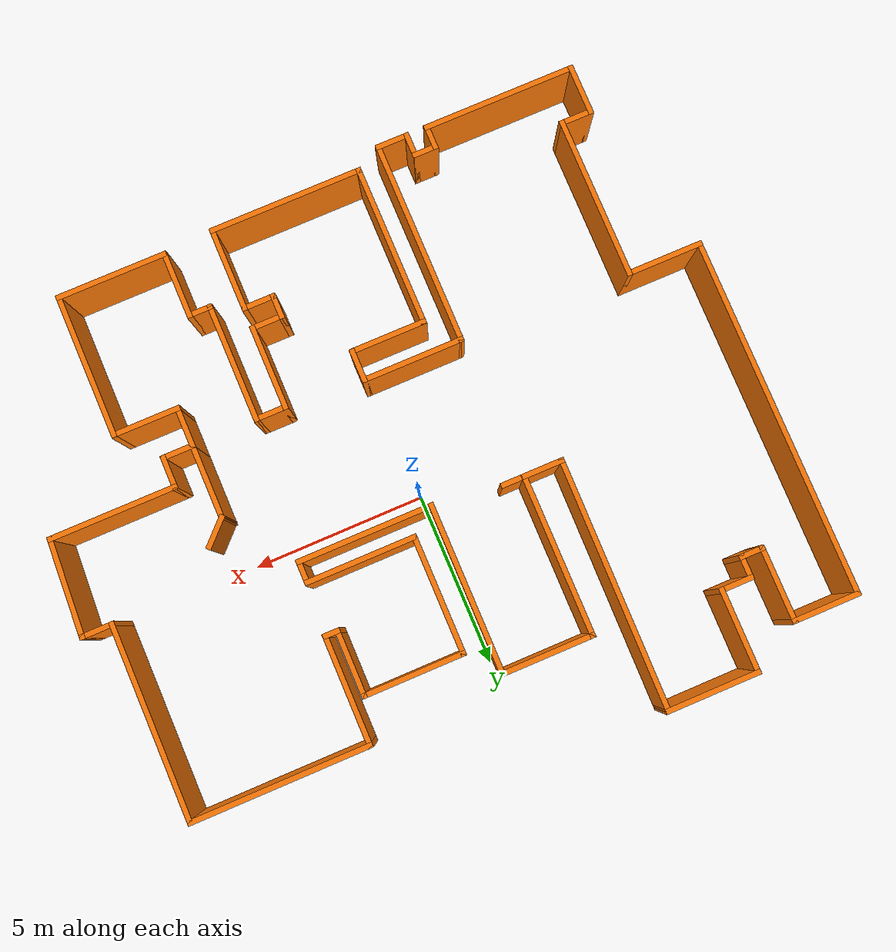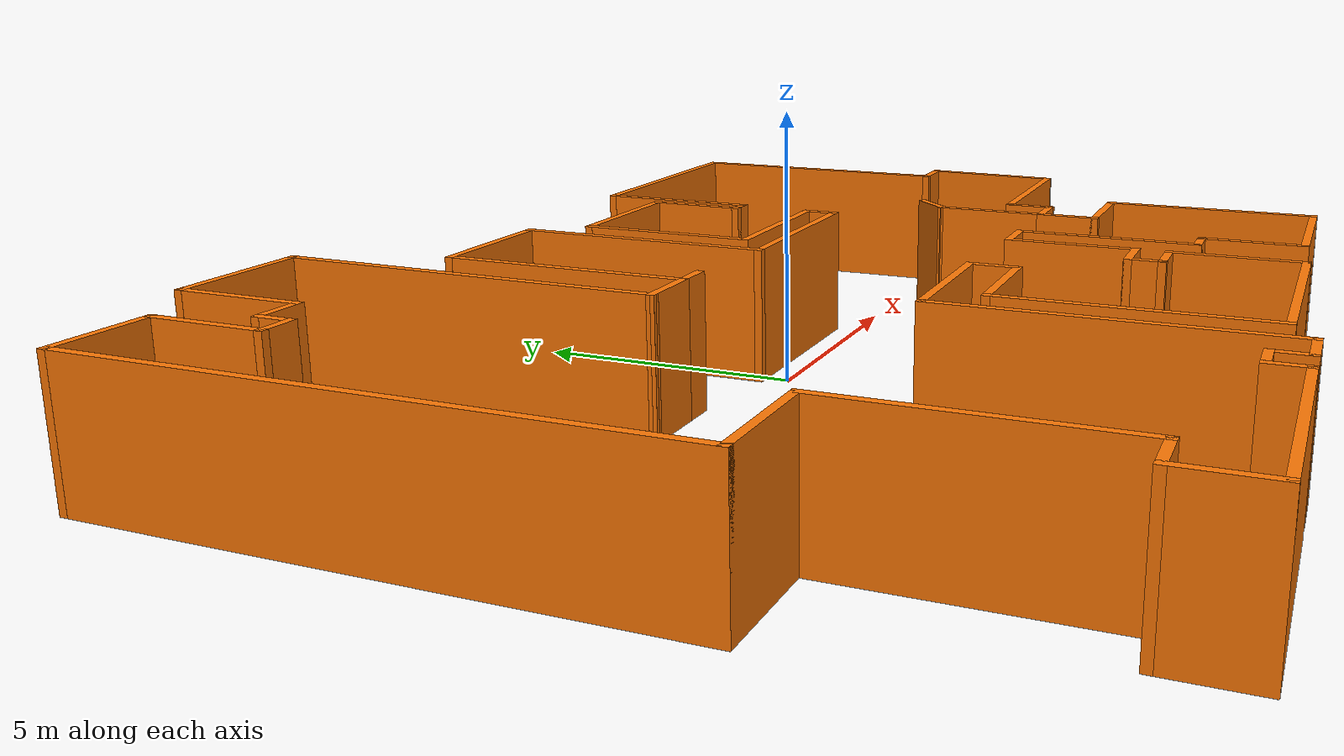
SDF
<?xml version='1.0'?>
<sdf version='1.6'>
  <model name='map_126'>
    <pose frame=''>0.029749 -0.629155 0 0 -0 0</pose>
    <link name='Wall_10'>
      <collision name='Wall_10_Collision'>
        <geometry>
          <box>
            <size>2.75 0.15 2.5</size>
          </box>
        </geometry>
        <pose frame=''>0 0 1.25 0 -0 0</pose>
      </collision>
      <visual name='Wall_10_Visual'>
        <pose frame=''>0 0 1.25 0 -0 0</pose>
        <geometry>
          <box>
            <size>2.75 0.15 2.5</size>
          </box>
        </geometry>
        <material>
          <script>
            <uri>file://media/materials/scripts/gazebo.material</uri>
            <name>Gazebo/Grey</name>
          </script>
          <ambient>0.996078 0.47451 0.0196078 1</ambient>
        </material>
        <meta>
          <layer>0</layer>
        </meta>
      </visual>
      <pose frame=''>-5.12699 8.57474 0 0 -0 0</pose>
    </link>
    <link name='Wall_12'>
      <collision name='Wall_12_Collision'>
        <geometry>
          <box>
            <size>2.5 0.15 2.5</size>
          </box>
        </geometry>
        <pose frame=''>0 0 1.25 0 -0 0</pose>
      </collision>
      <visual name='Wall_12_Visual'>
        <pose frame=''>0 0 1.25 0 -0 0</pose>
        <geometry>
          <box>
            <size>2.5 0.15 2.5</size>
          </box>
        </geometry>
        <material>
          <script>
            <uri>file://media/materials/scripts/gazebo.material</uri>
            <name>Gazebo/Grey</name>
          </script>
          <ambient>0.996078 0.47451 0.0196078 1</ambient>
        </material>
        <meta>
          <layer>0</layer>
        </meta>
      </visual>
      <pose frame=''>-6.42699 7.39974 0 0 -0 -1.5708</pose>
    </link>
    <link name='Wall_13'>
      <collision name='Wall_13_Collision'>
        <geometry>
          <box>
            <size>1 0.15 2.5</size>
          </box>
        </geometry>
        <pose frame=''>0 0 1.25 0 -0 0</pose>
      </collision>
      <visual name='Wall_13_Visual'>
        <pose frame=''>0 0 1.25 0 -0 0</pose>
        <geometry>
          <box>
            <size>1 0.15 2.5</size>
          </box>
        </geometry>
        <material>
          <script>
            <uri>file://media/materials/scripts/gazebo.material</uri>
            <name>Gazebo/Grey</name>
          </script>
          <ambient>0.996078 0.47451 0.0196078 1</ambient>
        </material>
        <meta>
          <layer>0</layer>
        </meta>
      </visual>
      <pose frame=''>-6.85199 6.22474 0 0 -0 3.14159</pose>
    </link>
    <link name='Wall_14'>
      <collision name='Wall_14_Collision'>
        <geometry>
          <box>
            <size>0.75 0.15 2.5</size>
          </box>
        </geometry>
        <pose frame=''>0 0 1.25 0 -0 0</pose>
      </collision>
      <visual name='Wall_14_Visual'>
        <pose frame=''>0 0 1.25 0 -0 0</pose>
        <geometry>
          <box>
            <size>0.75 0.15 2.5</size>
          </box>
        </geometry>
        <material>
          <script>
            <uri>file://media/materials/scripts/gazebo.material</uri>
            <name>Gazebo/Grey</name>
          </script>
          <ambient>0.996078 0.47451 0.0196078 1</ambient>
        </material>
        <meta>
          <layer>0</layer>
        </meta>
      </visual>
      <pose frame=''>-7.27699 5.92474 0 0 -0 -1.5708</pose>
    </link>
    <link name='Wall_15'>
      <collision name='Wall_15_Collision'>
        <geometry>
          <box>
            <size>0.75 0.15 2.5</size>
          </box>
        </geometry>
        <pose frame=''>0 0 1.25 0 -0 0</pose>
      </collision>
      <visual name='Wall_15_Visual'>
        <pose frame=''>0 0 1.25 0 -0 0</pose>
        <geometry>
          <box>
            <size>0.75 0.15 2.5</size>
          </box>
        </geometry>
        <material>
          <script>
            <uri>file://media/materials/scripts/gazebo.material</uri>
            <name>Gazebo/Grey</name>
          </script>
          <ambient>0.996078 0.47451 0.0196078 1</ambient>
        </material>
        <meta>
          <layer>0</layer>
        </meta>
      </visual>
      <pose frame=''>-7.57699 5.62474 0 0 -0 3.14159</pose>
    </link>
    <link name='Wall_16'>
      <collision name='Wall_16_Collision'>
        <geometry>
          <box>
            <size>2.25 0.15 2.5</size>
          </box>
        </geometry>
        <pose frame=''>0 0 1.25 0 -0 0</pose>
      </collision>
      <visual name='Wall_16_Visual'>
        <pose frame=''>0 0 1.25 0 -0 0</pose>
        <geometry>
          <box>
            <size>2.25 0.15 2.5</size>
          </box>
        </geometry>
        <material>
          <script>
            <uri>file://media/materials/scripts/gazebo.material</uri>
            <name>Gazebo/Grey</name>
          </script>
          <ambient>0.996078 0.47451 0.0196078 1</ambient>
        </material>
        <meta>
          <layer>0</layer>
        </meta>
      </visual>
      <pose frame=''>-7.87699 6.67474 0 0 -0 1.5708</pose>
    </link>
    <link name='Wall_17'>
      <collision name='Wall_17_Collision'>
        <geometry>
          <box>
            <size>2 0.15 2.5</size>
          </box>
        </geometry>
        <pose frame=''>0 0 1.25 0 -0 0</pose>
      </collision>
      <visual name='Wall_17_Visual'>
        <pose frame=''>0 0 1.25 0 -0 0</pose>
        <geometry>
          <box>
            <size>2 0.15 2.5</size>
          </box>
        </geometry>
        <material>
          <script>
            <uri>file://media/materials/scripts/gazebo.material</uri>
            <name>Gazebo/Grey</name>
          </script>
          <ambient>0.996078 0.47451 0.0196078 1</ambient>
        </material>
        <meta>
          <layer>0</layer>
        </meta>
      </visual>
      <pose frame=''>-8.80199 7.72474 0 0 -0 3.14159</pose>
    </link>
    <link name='Wall_18'>
      <collision name='Wall_18_Collision'>
        <geometry>
          <box>
            <size>10.5 0.15 2.5</size>
          </box>
        </geometry>
        <pose frame=''>0 0 1.25 0 -0 0</pose>
      </collision>
      <visual name='Wall_18_Visual'>
        <pose frame=''>0 0 1.25 0 -0 0</pose>
        <geometry>
          <box>
            <size>10.5 0.15 2.5</size>
          </box>
        </geometry>
        <material>
          <script>
            <uri>file://media/materials/scripts/gazebo.material</uri>
            <name>Gazebo/Grey</name>
          </script>
          <ambient>0.996078 0.47451 0.0196078 1</ambient>
        </material>
        <meta>
          <layer>0</layer>
        </meta>
      </visual>
      <pose frame=''>-9.72699 2.54974 0 0 -0 -1.5708</pose>
    </link>
    <link name='Wall_19'>
      <collision name='Wall_19_Collision'>
        <geometry>
          <box>
            <size>2.25 0.15 2.5</size>
          </box>
        </geometry>
        <pose frame=''>0 0 1.25 0 -0 0</pose>
      </collision>
      <visual name='Wall_19_Visual'>
        <pose frame=''>0 0 1.25 0 -0 0</pose>
        <geometry>
          <box>
            <size>2.25 0.15 2.5</size>
          </box>
        </geometry>
        <material>
          <script>
            <uri>file://media/materials/scripts/gazebo.material</uri>
            <name>Gazebo/Grey</name>
          </script>
          <ambient>0.996078 0.47451 0.0196078 1</ambient>
        </material>
        <meta>
          <layer>0</layer>
        </meta>
      </visual>
      <pose frame=''>-8.67699 -2.62526 0 0 -0 0</pose>
    </link>
    <link name='Wall_20'>
      <collision name='Wall_20_Collision'>
        <geometry>
          <box>
            <size>4.75 0.15 2.5</size>
          </box>
        </geometry>
        <pose frame=''>0 0 1.25 0 -0 0</pose>
      </collision>
      <visual name='Wall_20_Visual'>
        <pose frame=''>0 0 1.25 0 -0 0</pose>
        <geometry>
          <box>
            <size>4.75 0.15 2.5</size>
          </box>
        </geometry>
        <material>
          <script>
            <uri>file://media/materials/scripts/gazebo.material</uri>
            <name>Gazebo/Grey</name>
          </script>
          <ambient>0.996078 0.47451 0.0196078 1</ambient>
        </material>
        <meta>
          <layer>0</layer>
        </meta>
      </visual>
      <pose frame=''>-7.62699 -4.92526 0 0 -0 -1.5708</pose>
    </link>
    <link name='Wall_21'>
      <collision name='Wall_21_Collision'>
        <geometry>
          <box>
            <size>1 0.15 2.5</size>
          </box>
        </geometry>
        <pose frame=''>0 0 1.25 0 -0 0</pose>
      </collision>
      <visual name='Wall_21_Visual'>
        <pose frame=''>0 0 1.25 0 -0 0</pose>
        <geometry>
          <box>
            <size>1 0.15 2.5</size>
          </box>
        </geometry>
        <material>
          <script>
            <uri>file://media/materials/scripts/gazebo.material</uri>
            <name>Gazebo/Grey</name>
          </script>
          <ambient>0.996078 0.47451 0.0196078 1</ambient>
        </material>
        <meta>
          <layer>0</layer>
        </meta>
      </visual>
      <pose frame=''>-8.05199 -7.22526 0 0 -0 3.14159</pose>
    </link>
    <link name='Wall_22'>
      <collision name='Wall_22_Collision'>
        <geometry>
          <box>
            <size>1.5 0.15 2.5</size>
          </box>
        </geometry>
        <pose frame=''>0 0 1.25 0 -0 0</pose>
      </collision>
      <visual name='Wall_22_Visual'>
        <pose frame=''>0 0 1.25 0 -0 0</pose>
        <geometry>
          <box>
            <size>1.5 0.15 2.5</size>
          </box>
        </geometry>
        <material>
          <script>
            <uri>file://media/materials/scripts/gazebo.material</uri>
            <name>Gazebo/Grey</name>
          </script>
          <ambient>0.996078 0.47451 0.0196078 1</ambient>
        </material>
        <meta>
          <layer>0</layer>
        </meta>
      </visual>
      <pose frame=''>-8.47699 -7.90026 0 0 -0 -1.5708</pose>
    </link>
    <link name='Wall_23'>
      <collision name='Wall_23_Collision'>
        <geometry>
          <box>
            <size>4.5 0.15 2.5</size>
          </box>
        </geometry>
        <pose frame=''>0 0 1.25 0 -0 0</pose>
      </collision>
      <visual name='Wall_23_Visual'>
        <pose frame=''>0 0 1.25 0 -0 0</pose>
        <geometry>
          <box>
            <size>4.5 0.15 2.5</size>
          </box>
        </geometry>
        <material>
          <script>
            <uri>file://media/materials/scripts/gazebo.material</uri>
            <name>Gazebo/Grey</name>
          </script>
          <ambient>0.996078 0.47451 0.0196078 1</ambient>
        </material>
        <meta>
          <layer>0</layer>
        </meta>
      </visual>
      <pose frame=''>-6.30199 -8.57526 0 0 -0 0</pose>
    </link>
    <link name='Wall_24'>
      <collision name='Wall_24_Collision'>
        <geometry>
          <box>
            <size>0.75 0.15 2.5</size>
          </box>
        </geometry>
        <pose frame=''>0 0 1.25 0 -0 0</pose>
      </collision>
      <visual name='Wall_24_Visual'>
        <pose frame=''>0 0 1.25 0 -0 0</pose>
        <geometry>
          <box>
            <size>0.75 0.15 2.5</size>
          </box>
        </geometry>
        <material>
          <script>
            <uri>file://media/materials/scripts/gazebo.material</uri>
            <name>Gazebo/Grey</name>
          </script>
          <ambient>0.996078 0.47451 0.0196078 1</ambient>
        </material>
        <meta>
          <layer>0</layer>
        </meta>
      </visual>
      <pose frame=''>-4.12699 -8.27526 0 0 -0 1.5708</pose>
    </link>
    <link name='Wall_25'>
      <collision name='Wall_25_Collision'>
        <geometry>
          <box>
            <size>0.75 0.15 2.5</size>
          </box>
        </geometry>
        <pose frame=''>0 0 1.25 0 -0 0</pose>
      </collision>
      <visual name='Wall_25_Visual'>
        <pose frame=''>0 0 1.25 0 -0 0</pose>
        <geometry>
          <box>
            <size>0.75 0.15 2.5</size>
          </box>
        </geometry>
        <material>
          <script>
            <uri>file://media/materials/scripts/gazebo.material</uri>
            <name>Gazebo/Grey</name>
          </script>
          <ambient>0.996078 0.47451 0.0196078 1</ambient>
        </material>
        <meta>
          <layer>0</layer>
        </meta>
      </visual>
      <pose frame=''>-3.82699 -7.97526 0 0 -0 0</pose>
    </link>
    <link name='Wall_26'>
      <collision name='Wall_26_Collision'>
        <geometry>
          <box>
            <size>0.75 0.15 2.5</size>
          </box>
        </geometry>
        <pose frame=''>0 0 1.25 0 -0 0</pose>
      </collision>
      <visual name='Wall_26_Visual'>
        <pose frame=''>0 0 1.25 0 -0 0</pose>
        <geometry>
          <box>
            <size>0.75 0.15 2.5</size>
          </box>
        </geometry>
        <material>
          <script>
            <uri>file://media/materials/scripts/gazebo.material</uri>
            <name>Gazebo/Grey</name>
          </script>
          <ambient>0.996078 0.47451 0.0196078 1</ambient>
        </material>
        <meta>
          <layer>0</layer>
        </meta>
      </visual>
      <pose frame=''>-3.52699 -8.27526 0 0 -0 -1.5708</pose>
    </link>
    <link name='Wall_27'>
      <collision name='Wall_27_Collision'>
        <geometry>
          <box>
            <size>1 0.15 2.5</size>
          </box>
        </geometry>
        <pose frame=''>0 0 1.25 0 -0 0</pose>
      </collision>
      <visual name='Wall_27_Visual'>
        <pose frame=''>0 0 1.25 0 -0 0</pose>
        <geometry>
          <box>
            <size>1 0.15 2.5</size>
          </box>
        </geometry>
        <material>
          <script>
            <uri>file://media/materials/scripts/gazebo.material</uri>
            <name>Gazebo/Grey</name>
          </script>
          <ambient>0.996078 0.47451 0.0196078 1</ambient>
        </material>
        <meta>
          <layer>0</layer>
        </meta>
      </visual>
      <pose frame=''>-3.10199 -8.57526 0 0 -0 0</pose>
    </link>
    <link name='Wall_28'>
      <collision name='Wall_28_Collision'>
        <geometry>
          <box>
            <size>6 0.15 2.5</size>
          </box>
        </geometry>
        <pose frame=''>0 0 1.25 0 -0 0</pose>
      </collision>
      <visual name='Wall_28_Visual'>
        <pose frame=''>0 0 1.25 0 -0 0</pose>
        <geometry>
          <box>
            <size>6 0.15 2.5</size>
          </box>
        </geometry>
        <material>
          <script>
            <uri>file://media/materials/scripts/gazebo.material</uri>
            <name>Gazebo/Grey</name>
          </script>
          <ambient>0.996078 0.47451 0.0196078 1</ambient>
        </material>
        <meta>
          <layer>0</layer>
        </meta>
      </visual>
      <pose frame=''>-2.67699 -5.65026 0 0 -0 1.5708</pose>
    </link>
    <link name='Wall_29'>
      <collision name='Wall_29_Collision'>
        <geometry>
          <box>
            <size>3 0.15 2.5</size>
          </box>
        </geometry>
        <pose frame=''>0 0 1.25 0 -0 0</pose>
      </collision>
      <visual name='Wall_29_Visual'>
        <pose frame=''>0 0 1.25 0 -0 0</pose>
        <geometry>
          <box>
            <size>3 0.15 2.5</size>
          </box>
        </geometry>
        <material>
          <script>
            <uri>file://media/materials/scripts/gazebo.material</uri>
            <name>Gazebo/Grey</name>
          </script>
          <ambient>0.996078 0.47451 0.0196078 1</ambient>
        </material>
        <meta>
          <layer>0</layer>
        </meta>
      </visual>
      <pose frame=''>-1.25199 -2.72526 0 0 -0 0</pose>
    </link>
    <link name='Wall_30'>
      <collision name='Wall_30_Collision'>
        <geometry>
          <box>
            <size>1 0.15 2.5</size>
          </box>
        </geometry>
        <pose frame=''>0 0 1.25 0 -0 0</pose>
      </collision>
      <visual name='Wall_30_Visual'>
        <pose frame=''>0 0 1.25 0 -0 0</pose>
        <geometry>
          <box>
            <size>1 0.15 2.5</size>
          </box>
        </geometry>
        <material>
          <script>
            <uri>file://media/materials/scripts/gazebo.material</uri>
            <name>Gazebo/Grey</name>
          </script>
          <ambient>0.996078 0.47451 0.0196078 1</ambient>
        </material>
        <meta>
          <layer>0</layer>
        </meta>
      </visual>
      <pose frame=''>0.173014 -3.15026 0 0 -0 -1.5708</pose>
    </link>
    <link name='Wall_31'>
      <collision name='Wall_31_Collision'>
        <geometry>
          <box>
            <size>2.25 0.15 2.5</size>
          </box>
        </geometry>
        <pose frame=''>0 0 1.25 0 -0 0</pose>
      </collision>
      <visual name='Wall_31_Visual'>
        <pose frame=''>0 0 1.25 0 -0 0</pose>
        <geometry>
          <box>
            <size>2.25 0.15 2.5</size>
          </box>
        </geometry>
        <material>
          <script>
            <uri>file://media/materials/scripts/gazebo.material</uri>
            <name>Gazebo/Grey</name>
          </script>
          <ambient>0.996078 0.47451 0.0196078 1</ambient>
        </material>
        <meta>
          <layer>0</layer>
        </meta>
      </visual>
      <pose frame=''>-0.876986 -3.57526 0 0 -0 3.14159</pose>
    </link>
    <link name='Wall_32'>
      <collision name='Wall_32_Collision'>
        <geometry>
          <box>
            <size>4.75 0.15 2.5</size>
          </box>
        </geometry>
        <pose frame=''>0 0 1.25 0 -0 0</pose>
      </collision>
      <visual name='Wall_32_Visual'>
        <pose frame=''>0 0 1.25 0 -0 0</pose>
        <geometry>
          <box>
            <size>4.75 0.15 2.5</size>
          </box>
        </geometry>
        <material>
          <script>
            <uri>file://media/materials/scripts/gazebo.material</uri>
            <name>Gazebo/Grey</name>
          </script>
          <ambient>0.996078 0.47451 0.0196078 1</ambient>
        </material>
        <meta>
          <layer>0</layer>
        </meta>
      </visual>
      <pose frame=''>-1.92699 -5.87526 0 0 -0 -1.5708</pose>
    </link>
    <link name='Wall_33'>
      <collision name='Wall_33_Collision'>
        <geometry>
          <box>
            <size>4.5 0.15 2.5</size>
          </box>
        </geometry>
        <pose frame=''>0 0 1.25 0 -0 0</pose>
      </collision>
      <visual name='Wall_33_Visual'>
        <pose frame=''>0 0 1.25 0 -0 0</pose>
        <geometry>
          <box>
            <size>4.5 0.15 2.5</size>
          </box>
        </geometry>
        <material>
          <script>
            <uri>file://media/materials/scripts/gazebo.material</uri>
            <name>Gazebo/Grey</name>
          </script>
          <ambient>0.996078 0.47451 0.0196078 1</ambient>
        </material>
        <meta>
          <layer>0</layer>
        </meta>
      </visual>
      <pose frame=''>0.248014 -8.17526 0 0 -0 0</pose>
    </link>
    <link name='Wall_34'>
      <collision name='Wall_34_Collision'>
        <geometry>
          <box>
            <size>2.5 0.15 2.5</size>
          </box>
        </geometry>
        <pose frame=''>0 0 1.25 0 -0 0</pose>
      </collision>
      <visual name='Wall_34_Visual'>
        <pose frame=''>0 0 1.25 0 -0 0</pose>
        <geometry>
          <box>
            <size>2.5 0.15 2.5</size>
          </box>
        </geometry>
        <material>
          <script>
            <uri>file://media/materials/scripts/gazebo.material</uri>
            <name>Gazebo/Grey</name>
          </script>
          <ambient>0.996078 0.47451 0.0196078 1</ambient>
        </material>
        <meta>
          <layer>0</layer>
        </meta>
      </visual>
      <pose frame=''>2.42301 -7.00026 0 0 -0 1.5708</pose>
    </link>
    <link name='Wall_35'>
      <collision name='Wall_35_Collision'>
        <geometry>
          <box>
            <size>1 0.15 2.5</size>
          </box>
        </geometry>
        <pose frame=''>0 0 1.25 0 -0 0</pose>
      </collision>
      <visual name='Wall_35_Visual'>
        <pose frame=''>0 0 1.25 0 -0 0</pose>
        <geometry>
          <box>
            <size>1 0.15 2.5</size>
          </box>
        </geometry>
        <material>
          <script>
            <uri>file://media/materials/scripts/gazebo.material</uri>
            <name>Gazebo/Grey</name>
          </script>
          <ambient>0.996078 0.47451 0.0196078 1</ambient>
        </material>
        <meta>
          <layer>0</layer>
        </meta>
      </visual>
      <pose frame=''>1.99801 -5.82526 0 0 -0 3.14159</pose>
    </link>
    <link name='Wall_36'>
      <collision name='Wall_36_Collision'>
        <geometry>
          <box>
            <size>0.75 0.15 2.5</size>
          </box>
        </geometry>
        <pose frame=''>0 0 1.25 0 -0 0</pose>
      </collision>
      <visual name='Wall_36_Visual'>
        <pose frame=''>0 0 1.25 0 -0 0</pose>
        <geometry>
          <box>
            <size>0.75 0.15 2.5</size>
          </box>
        </geometry>
        <material>
          <script>
            <uri>file://media/materials/scripts/gazebo.material</uri>
            <name>Gazebo/Grey</name>
          </script>
          <ambient>0.996078 0.47451 0.0196078 1</ambient>
        </material>
        <meta>
          <layer>0</layer>
        </meta>
      </visual>
      <pose frame=''>1.57301 -5.52526 0 0 -0 1.5708</pose>
    </link>
    <link name='Wall_37'>
      <collision name='Wall_37_Collision'>
        <geometry>
          <box>
            <size>1 0.15 2.5</size>
          </box>
        </geometry>
        <pose frame=''>0 0 1.25 0 -0 0</pose>
      </collision>
      <visual name='Wall_37_Visual'>
        <pose frame=''>0 0 1.25 0 -0 0</pose>
        <geometry>
          <box>
            <size>1 0.15 2.5</size>
          </box>
        </geometry>
        <material>
          <script>
            <uri>file://media/materials/scripts/gazebo.material</uri>
            <name>Gazebo/Grey</name>
          </script>
          <ambient>0.996078 0.47451 0.0196078 1</ambient>
        </material>
        <meta>
          <layer>0</layer>
        </meta>
      </visual>
      <pose frame=''>1.99801 -5.22526 0 0 -0 0</pose>
    </link>
    <link name='Wall_38'>
      <collision name='Wall_38_Collision'>
        <geometry>
          <box>
            <size>2.5 0.15 2.5</size>
          </box>
        </geometry>
        <pose frame=''>0 0 1.25 0 -0 0</pose>
      </collision>
      <visual name='Wall_38_Visual'>
        <pose frame=''>0 0 1.25 0 -0 0</pose>
        <geometry>
          <box>
            <size>2.5 0.15 2.5</size>
          </box>
        </geometry>
        <material>
          <script>
            <uri>file://media/materials/scripts/gazebo.material</uri>
            <name>Gazebo/Grey</name>
          </script>
          <ambient>0.996078 0.47451 0.0196078 1</ambient>
        </material>
        <meta>
          <layer>0</layer>
        </meta>
      </visual>
      <pose frame=''>2.42301 -4.05026 0 0 -0 1.5708</pose>
    </link>
    <link name='Wall_39'>
      <collision name='Wall_39_Collision'>
        <geometry>
          <box>
            <size>1 0.15 2.5</size>
          </box>
        </geometry>
        <pose frame=''>0 0 1.25 0 -0 0</pose>
      </collision>
      <visual name='Wall_39_Visual'>
        <pose frame=''>0 0 1.25 0 -0 0</pose>
        <geometry>
          <box>
            <size>1 0.15 2.5</size>
          </box>
        </geometry>
        <material>
          <script>
            <uri>file://media/materials/scripts/gazebo.material</uri>
            <name>Gazebo/Grey</name>
          </script>
          <ambient>0.996078 0.47451 0.0196078 1</ambient>
        </material>
        <meta>
          <layer>0</layer>
        </meta>
      </visual>
      <pose frame=''>2.84801 -2.87526 0 0 -0 0</pose>
    </link>
    <link name='Wall_40'>
      <collision name='Wall_40_Collision'>
        <geometry>
          <box>
            <size>3.5 0.15 2.5</size>
          </box>
        </geometry>
        <pose frame=''>0 0 1.25 0 -0 0</pose>
      </collision>
      <visual name='Wall_40_Visual'>
        <pose frame=''>0 0 1.25 0 -0 0</pose>
        <geometry>
          <box>
            <size>3.5 0.15 2.5</size>
          </box>
        </geometry>
        <material>
          <script>
            <uri>file://media/materials/scripts/gazebo.material</uri>
            <name>Gazebo/Grey</name>
          </script>
          <ambient>0.996078 0.47451 0.0196078 1</ambient>
        </material>
        <meta>
          <layer>0</layer>
        </meta>
      </visual>
      <pose frame=''>3.27301 -4.55026 0 0 -0 -1.5708</pose>
    </link>
    <link name='Wall_41'>
      <collision name='Wall_41_Collision'>
        <geometry>
          <box>
            <size>0.75 0.15 2.5</size>
          </box>
        </geometry>
        <pose frame=''>0 0 1.25 0 -0 0</pose>
      </collision>
      <visual name='Wall_41_Visual'>
        <pose frame=''>0 0 1.25 0 -0 0</pose>
        <geometry>
          <box>
            <size>0.75 0.15 2.5</size>
          </box>
        </geometry>
        <material>
          <script>
            <uri>file://media/materials/scripts/gazebo.material</uri>
            <name>Gazebo/Grey</name>
          </script>
          <ambient>0.996078 0.47451 0.0196078 1</ambient>
        </material>
        <meta>
          <layer>0</layer>
        </meta>
      </visual>
      <pose frame=''>3.57301 -6.22526 0 0 -0 0</pose>
    </link>
    <link name='Wall_42'>
      <collision name='Wall_42_Collision'>
        <geometry>
          <box>
            <size>2 0.15 2.5</size>
          </box>
        </geometry>
        <pose frame=''>0 0 1.25 0 -0 0</pose>
      </collision>
      <visual name='Wall_42_Visual'>
        <pose frame=''>0 0 1.25 0 -0 0</pose>
        <geometry>
          <box>
            <size>2 0.15 2.5</size>
          </box>
        </geometry>
        <material>
          <script>
            <uri>file://media/materials/scripts/gazebo.material</uri>
            <name>Gazebo/Grey</name>
          </script>
          <ambient>0.996078 0.47451 0.0196078 1</ambient>
        </material>
        <meta>
          <layer>0</layer>
        </meta>
      </visual>
      <pose frame=''>3.87301 -7.15026 0 0 -0 -1.5708</pose>
    </link>
    <link name='Wall_43'>
      <collision name='Wall_43_Collision'>
        <geometry>
          <box>
            <size>3.25 0.15 2.5</size>
          </box>
        </geometry>
        <pose frame=''>0 0 1.25 0 -0 0</pose>
      </collision>
      <visual name='Wall_43_Visual'>
        <pose frame=''>0 0 1.25 0 -0 0</pose>
        <geometry>
          <box>
            <size>3.25 0.15 2.5</size>
          </box>
        </geometry>
        <material>
          <script>
            <uri>file://media/materials/scripts/gazebo.material</uri>
            <name>Gazebo/Grey</name>
          </script>
          <ambient>0.996078 0.47451 0.0196078 1</ambient>
        </material>
        <meta>
          <layer>0</layer>
        </meta>
      </visual>
      <pose frame=''>5.42301 -8.07526 0 0 -0 0</pose>
    </link>
    <link name='Wall_44'>
      <collision name='Wall_44_Collision'>
        <geometry>
          <box>
            <size>4.25 0.15 2.5</size>
          </box>
        </geometry>
        <pose frame=''>0 0 1.25 0 -0 0</pose>
      </collision>
      <visual name='Wall_44_Visual'>
        <pose frame=''>0 0 1.25 0 -0 0</pose>
        <geometry>
          <box>
            <size>4.25 0.15 2.5</size>
          </box>
        </geometry>
        <material>
          <script>
            <uri>file://media/materials/scripts/gazebo.material</uri>
            <name>Gazebo/Grey</name>
          </script>
          <ambient>0.996078 0.47451 0.0196078 1</ambient>
        </material>
        <meta>
          <layer>0</layer>
        </meta>
      </visual>
      <pose frame=''>6.97301 -6.02526 0 0 -0 1.5708</pose>
    </link>
    <link name='Wall_45'>
      <collision name='Wall_45_Collision'>
        <geometry>
          <box>
            <size>2 0.15 2.5</size>
          </box>
        </geometry>
        <pose frame=''>0 0 1.25 0 -0 0</pose>
      </collision>
      <visual name='Wall_45_Visual'>
        <pose frame=''>0 0 1.25 0 -0 0</pose>
        <geometry>
          <box>
            <size>2 0.15 2.5</size>
          </box>
        </geometry>
        <material>
          <script>
            <uri>file://media/materials/scripts/gazebo.material</uri>
            <name>Gazebo/Grey</name>
          </script>
          <ambient>0.996078 0.47451 0.0196078 1</ambient>
        </material>
        <meta>
          <layer>0</layer>
        </meta>
      </visual>
      <pose frame=''>6.04801 -3.97526 0 0 -0 3.14159</pose>
    </link>
    <link name='Wall_46'>
      <collision name='Wall_46_Collision'>
        <geometry>
          <box>
            <size>1.25 0.15 2.5</size>
          </box>
        </geometry>
        <pose frame=''>0 0 1.25 0 -0 0</pose>
      </collision>
      <visual name='Wall_46_Visual'>
        <pose frame=''>0 0 1.25 0 -0 0</pose>
        <geometry>
          <box>
            <size>1.25 0.15 2.5</size>
          </box>
        </geometry>
        <material>
          <script>
            <uri>file://media/materials/scripts/gazebo.material</uri>
            <name>Gazebo/Grey</name>
          </script>
          <ambient>0.996078 0.47451 0.0196078 1</ambient>
        </material>
        <meta>
          <layer>0</layer>
        </meta>
      </visual>
      <pose frame=''>5.12301 -3.42526 0 0 -0 1.5708</pose>
    </link>
    <link name='Wall_49'>
      <collision name='Wall_49_Collision'>
        <geometry>
          <box>
            <size>1 0.15 2.5</size>
          </box>
        </geometry>
        <pose frame=''>0 0 1.25 0 -0 0</pose>
      </collision>
      <visual name='Wall_49_Visual'>
        <pose frame=''>0 0 1.25 0 -0 0</pose>
        <geometry>
          <box>
            <size>1 0.15 2.5</size>
          </box>
        </geometry>
        <material>
          <script>
            <uri>file://media/materials/scripts/gazebo.material</uri>
            <name>Gazebo/Grey</name>
          </script>
          <ambient>0.996078 0.47451 0.0196078 1</ambient>
        </material>
        <meta>
          <layer>0</layer>
        </meta>
      </visual>
      <pose frame=''>9.29801 0.724741 0 0 -0 3.14159</pose>
    </link>
    <link name='Wall_62'>
      <collision name='Wall_62_Collision'>
        <geometry>
          <box>
            <size>5.75 0.15 2.5</size>
          </box>
        </geometry>
        <pose frame=''>0 0 1.25 0 -0 0</pose>
      </collision>
      <visual name='Wall_62_Visual'>
        <pose frame=''>0 0 1.25 0 -0 0</pose>
        <geometry>
          <box>
            <size>5.75 0.15 2.5</size>
          </box>
        </geometry>
        <material>
          <script>
            <uri>file://media/materials/scripts/gazebo.material</uri>
            <name>Gazebo/Grey</name>
          </script>
          <ambient>0.996078 0.47451 0.0196078 1</ambient>
        </material>
        <meta>
          <layer>0</layer>
        </meta>
      </visual>
      <pose frame=''>8.87301 3.52474 0 0 -0 1.5708</pose>
    </link>
    <link name='Wall_63'>
      <collision name='Wall_63_Collision'>
        <geometry>
          <box>
            <size>5.25 0.15 2.5</size>
          </box>
        </geometry>
        <pose frame=''>0 0 1.25 0 -0 0</pose>
      </collision>
      <visual name='Wall_63_Visual'>
        <pose frame=''>0 0 1.25 0 -0 0</pose>
        <geometry>
          <box>
            <size>5.25 0.15 2.5</size>
          </box>
        </geometry>
        <material>
          <script>
            <uri>file://media/materials/scripts/gazebo.material</uri>
            <name>Gazebo/Grey</name>
          </script>
          <ambient>0.996078 0.47451 0.0196078 1</ambient>
        </material>
        <meta>
          <layer>0</layer>
        </meta>
      </visual>
      <pose frame=''>6.32301 6.32474 0 0 -0 3.14159</pose>
    </link>
    <link name='Wall_64'>
      <collision name='Wall_64_Collision'>
        <geometry>
          <box>
            <size>3.25 0.15 2.5</size>
          </box>
        </geometry>
        <pose frame=''>0 0 1.25 0 -0 0</pose>
      </collision>
      <visual name='Wall_64_Visual'>
        <pose frame=''>0 0 1.25 0 -0 0</pose>
        <geometry>
          <box>
            <size>3.25 0.15 2.5</size>
          </box>
        </geometry>
        <material>
          <script>
            <uri>file://media/materials/scripts/gazebo.material</uri>
            <name>Gazebo/Grey</name>
          </script>
          <ambient>0.996078 0.47451 0.0196078 1</ambient>
        </material>
        <meta>
          <layer>0</layer>
        </meta>
      </visual>
      <pose frame=''>3.77301 4.77474 0 0 -0 -1.5708</pose>
    </link>
    <link name='Wall_65'>
      <collision name='Wall_65_Collision'>
        <geometry>
          <box>
            <size>0.5 0.15 2.5</size>
          </box>
        </geometry>
        <pose frame=''>0 0 1.25 0 -0 0</pose>
      </collision>
      <visual name='Wall_65_Visual'>
        <pose frame=''>0 0 1.25 0 -0 0</pose>
        <geometry>
          <box>
            <size>0.5 0.15 2.5</size>
          </box>
        </geometry>
        <material>
          <script>
            <uri>file://media/materials/scripts/gazebo.material</uri>
            <name>Gazebo/Grey</name>
          </script>
          <ambient>0.996078 0.47451 0.0196078 1</ambient>
        </material>
        <meta>
          <layer>0</layer>
        </meta>
      </visual>
      <pose frame=''>3.59801 3.22474 0 0 -0 3.14159</pose>
    </link>
    <link name='Wall_66'>
      <collision name='Wall_66_Collision'>
        <geometry>
          <box>
            <size>2 0.15 2.5</size>
          </box>
        </geometry>
        <pose frame=''>0 0 1.25 0 -0 0</pose>
      </collision>
      <visual name='Wall_66_Visual'>
        <pose frame=''>0 0 1.25 0 -0 0</pose>
        <geometry>
          <box>
            <size>2 0.15 2.5</size>
          </box>
        </geometry>
        <material>
          <script>
            <uri>file://media/materials/scripts/gazebo.material</uri>
            <name>Gazebo/Grey</name>
          </script>
          <ambient>0.996078 0.47451 0.0196078 1</ambient>
        </material>
        <meta>
          <layer>0</layer>
        </meta>
      </visual>
      <pose frame=''>3.42301 4.14974 0 0 -0 1.5708</pose>
    </link>
    <link name='Wall_67'>
      <collision name='Wall_67_Collision'>
        <geometry>
          <box>
            <size>3 0.15 2.5</size>
          </box>
        </geometry>
        <pose frame=''>0 0 1.25 0 -0 0</pose>
      </collision>
      <visual name='Wall_67_Visual'>
        <pose frame=''>0 0 1.25 0 -0 0</pose>
        <geometry>
          <box>
            <size>3 0.15 2.5</size>
          </box>
        </geometry>
        <material>
          <script>
            <uri>file://media/materials/scripts/gazebo.material</uri>
            <name>Gazebo/Grey</name>
          </script>
          <ambient>0.996078 0.47451 0.0196078 1</ambient>
        </material>
        <meta>
          <layer>0</layer>
        </meta>
      </visual>
      <pose frame=''>1.99801 5.07474 0 0 -0 3.14159</pose>
    </link>
    <link name='Wall_68'>
      <collision name='Wall_68_Collision'>
        <geometry>
          <box>
            <size>3.5 0.15 2.5</size>
          </box>
        </geometry>
        <pose frame=''>0 0 1.25 0 -0 0</pose>
      </collision>
      <visual name='Wall_68_Visual'>
        <pose frame=''>0 0 1.25 0 -0 0</pose>
        <geometry>
          <box>
            <size>3.5 0.15 2.5</size>
          </box>
        </geometry>
        <material>
          <script>
            <uri>file://media/materials/scripts/gazebo.material</uri>
            <name>Gazebo/Grey</name>
          </script>
          <ambient>0.996078 0.47451 0.0196078 1</ambient>
        </material>
        <meta>
          <layer>0</layer>
        </meta>
      </visual>
      <pose frame=''>0.573014 3.39974 0 0 -0 -1.5708</pose>
    </link>
    <link name='Wall_69'>
      <collision name='Wall_69_Collision'>
        <geometry>
          <box>
            <size>3.25 0.15 2.5</size>
          </box>
        </geometry>
        <pose frame=''>0 0 1.25 0 -0 0</pose>
      </collision>
      <visual name='Wall_69_Visual'>
        <pose frame=''>0 0 1.25 0 -0 0</pose>
        <geometry>
          <box>
            <size>3.25 0.15 2.5</size>
          </box>
        </geometry>
        <material>
          <script>
            <uri>file://media/materials/scripts/gazebo.material</uri>
            <name>Gazebo/Grey</name>
          </script>
          <ambient>0.996078 0.47451 0.0196078 1</ambient>
        </material>
        <meta>
          <layer>0</layer>
        </meta>
      </visual>
      <pose frame=''>2.12301 1.72474 0 0 -0 0</pose>
    </link>
    <link name='Wall_70'>
      <collision name='Wall_70_Collision'>
        <geometry>
          <box>
            <size>0.75 0.15 2.5</size>
          </box>
        </geometry>
        <pose frame=''>0 0 1.25 0 -0 0</pose>
      </collision>
      <visual name='Wall_70_Visual'>
        <pose frame=''>0 0 1.25 0 -0 0</pose>
        <geometry>
          <box>
            <size>0.75 0.15 2.5</size>
          </box>
        </geometry>
        <material>
          <script>
            <uri>file://media/materials/scripts/gazebo.material</uri>
            <name>Gazebo/Grey</name>
          </script>
          <ambient>0.996078 0.47451 0.0196078 1</ambient>
        </material>
        <meta>
          <layer>0</layer>
        </meta>
      </visual>
      <pose frame=''>3.67301 1.42474 0 0 -0 -1.5708</pose>
    </link>
    <link name='Wall_71'>
      <collision name='Wall_71_Collision'>
        <geometry>
          <box>
            <size>4 0.15 2.5</size>
          </box>
        </geometry>
        <pose frame=''>0 0 1.25 0 -0 0</pose>
      </collision>
      <visual name='Wall_71_Visual'>
        <pose frame=''>0 0 1.25 0 -0 0</pose>
        <geometry>
          <box>
            <size>4 0.15 2.5</size>
          </box>
        </geometry>
        <material>
          <script>
            <uri>file://media/materials/scripts/gazebo.material</uri>
            <name>Gazebo/Grey</name>
          </script>
          <ambient>0.996078 0.47451 0.0196078 1</ambient>
        </material>
        <meta>
          <layer>0</layer>
        </meta>
      </visual>
      <pose frame=''>1.74801 1.12474 0 0 -0 3.14159</pose>
    </link>
    <link name='Wall_72'>
      <collision name='Wall_72_Collision'>
        <geometry>
          <box>
            <size>5 0.15 2.5</size>
          </box>
        </geometry>
        <pose frame=''>0 0 1.25 0 -0 0</pose>
      </collision>
      <visual name='Wall_72_Visual'>
        <pose frame=''>0 0 1.25 0 -0 0</pose>
        <geometry>
          <box>
            <size>5 0.15 2.5</size>
          </box>
        </geometry>
        <material>
          <script>
            <uri>file://media/materials/scripts/gazebo.material</uri>
            <name>Gazebo/Grey</name>
          </script>
          <ambient>0.996078 0.47451 0.0196078 1</ambient>
        </material>
        <meta>
          <layer>0</layer>
        </meta>
      </visual>
      <pose frame=''>-0.176986 3.54974 0 0 -0 1.5708</pose>
    </link>
    <link name='Wall_73'>
      <collision name='Wall_73_Collision'>
        <geometry>
          <box>
            <size>2.75 0.15 2.5</size>
          </box>
        </geometry>
        <pose frame=''>0 0 1.25 0 -0 0</pose>
      </collision>
      <visual name='Wall_73_Visual'>
        <pose frame=''>0 0 1.25 0 -0 0</pose>
        <geometry>
          <box>
            <size>2.75 0.15 2.5</size>
          </box>
        </geometry>
        <material>
          <script>
            <uri>file://media/materials/scripts/gazebo.material</uri>
            <name>Gazebo/Grey</name>
          </script>
          <ambient>0.996078 0.47451 0.0196078 1</ambient>
        </material>
        <meta>
          <layer>0</layer>
        </meta>
      </visual>
      <pose frame=''>-1.47699 5.97474 0 0 -0 3.14159</pose>
    </link>
    <link name='Wall_74'>
      <collision name='Wall_74_Collision'>
        <geometry>
          <box>
            <size>4.75 0.15 2.5</size>
          </box>
        </geometry>
        <pose frame=''>0 0 1.25 0 -0 0</pose>
      </collision>
      <visual name='Wall_74_Visual'>
        <pose frame=''>0 0 1.25 0 -0 0</pose>
        <geometry>
          <box>
            <size>4.75 0.15 2.5</size>
          </box>
        </geometry>
        <material>
          <script>
            <uri>file://media/materials/scripts/gazebo.material</uri>
            <name>Gazebo/Grey</name>
          </script>
          <ambient>0.996078 0.47451 0.0196078 1</ambient>
        </material>
        <meta>
          <layer>0</layer>
        </meta>
      </visual>
      <pose frame=''>-2.77699 3.67474 0 0 -0 -1.5708</pose>
    </link>
    <link name='Wall_75'>
      <collision name='Wall_75_Collision'>
        <geometry>
          <box>
            <size>1.25 0.15 2.5</size>
          </box>
        </geometry>
        <pose frame=''>0 0 1.25 0 -0 0</pose>
      </collision>
      <visual name='Wall_75_Visual'>
        <pose frame=''>0 0 1.25 0 -0 0</pose>
        <geometry>
          <box>
            <size>1.25 0.15 2.5</size>
          </box>
        </geometry>
        <material>
          <script>
            <uri>file://media/materials/scripts/gazebo.material</uri>
            <name>Gazebo/Grey</name>
          </script>
          <ambient>0.996078 0.47451 0.0196078 1</ambient>
        </material>
        <meta>
          <layer>0</layer>
        </meta>
      </visual>
      <pose frame=''>-3.32699 1.37474 0 0 -0 3.14159</pose>
    </link>
    <link name='Wall_76'>
      <collision name='Wall_76_Collision'>
        <geometry>
          <box>
            <size>7.35017 0.15 2.5</size>
          </box>
        </geometry>
        <pose frame=''>0 0 1.25 0 -0 0</pose>
      </collision>
      <visual name='Wall_76_Visual'>
        <pose frame=''>0 0 1.25 0 -0 0</pose>
        <geometry>
          <box>
            <size>7.35017 0.15 2.5</size>
          </box>
        </geometry>
        <material>
          <script>
            <uri>file://media/materials/scripts/gazebo.material</uri>
            <name>Gazebo/Grey</name>
          </script>
          <ambient>0.996078 0.47451 0.0196078 1</ambient>
        </material>
        <meta>
          <layer>0</layer>
        </meta>
      </visual>
      <pose frame=''>-3.85199 4.97474 0 0 -0 1.56385</pose>
    </link>
    <link name='Wall_78'>
      <collision name='Wall_78_Collision'>
        <geometry>
          <box>
            <size>0.75 0.15 2.5</size>
          </box>
        </geometry>
        <pose frame=''>0 0 1.25 0 -0 0</pose>
      </collision>
      <visual name='Wall_78_Visual'>
        <pose frame=''>0 0 1.25 0 -0 0</pose>
        <geometry>
          <box>
            <size>0.75 0.15 2.5</size>
          </box>
        </geometry>
        <material>
          <script>
            <uri>file://media/materials/scripts/gazebo.material</uri>
            <name>Gazebo/Grey</name>
          </script>
          <ambient>0.996078 0.47451 0.0196078 1</ambient>
        </material>
        <meta>
          <layer>0</layer>
        </meta>
      </visual>
      <pose frame=''>-2.47699 1.37474 0 0 -0 0</pose>
    </link>
    <link name='Wall_80'>
      <collision name='Wall_80_Collision'>
        <geometry>
          <box>
            <size>1 0.15 2.5</size>
          </box>
        </geometry>
        <pose frame=''>0 0 1.25 0 -0 0</pose>
      </collision>
      <visual name='Wall_80_Visual'>
        <pose frame=''>0 0 1.25 0 -0 0</pose>
        <geometry>
          <box>
            <size>1 0.15 2.5</size>
          </box>
        </geometry>
        <material>
          <script>
            <uri>file://media/materials/scripts/gazebo.material</uri>
            <name>Gazebo/Grey</name>
          </script>
          <ambient>0.996078 0.47451 0.0196078 1</ambient>
        </material>
        <meta>
          <layer>0</layer>
        </meta>
      </visual>
      <pose frame=''>5.54801 -2.87526 0 0 -0 0</pose>
    </link>
    <link name='Wall_81'>
      <collision name='Wall_81_Collision'>
        <geometry>
          <box>
            <size>1 0.15 2.5</size>
          </box>
        </geometry>
        <pose frame=''>0 0 1.25 0 -0 0</pose>
      </collision>
      <visual name='Wall_81_Visual'>
        <pose frame=''>0 0 1.25 0 -0 0</pose>
        <geometry>
          <box>
            <size>1 0.15 2.5</size>
          </box>
        </geometry>
        <material>
          <script>
            <uri>file://media/materials/scripts/gazebo.material</uri>
            <name>Gazebo/Grey</name>
          </script>
          <ambient>0.996078 0.47451 0.0196078 1</ambient>
        </material>
        <meta>
          <layer>0</layer>
        </meta>
      </visual>
      <pose frame=''>5.97301 -2.45026 0 0 -0 1.5708</pose>
    </link>
    <link name='Wall_82'>
      <collision name='Wall_82_Collision'>
        <geometry>
          <box>
            <size>3.75 0.15 2.5</size>
          </box>
        </geometry>
        <pose frame=''>0 0 1.25 0 -0 0</pose>
      </collision>
      <visual name='Wall_82_Visual'>
        <pose frame=''>0 0 1.25 0 -0 0</pose>
        <geometry>
          <box>
            <size>3.75 0.15 2.5</size>
          </box>
        </geometry>
        <material>
          <script>
            <uri>file://media/materials/scripts/gazebo.material</uri>
            <name>Gazebo/Grey</name>
          </script>
          <ambient>0.996078 0.47451 0.0196078 1</ambient>
        </material>
        <meta>
          <layer>0</layer>
        </meta>
      </visual>
      <pose frame=''>7.77301 -2.02526 0 0 -0 0</pose>
    </link>
    <link name='Wall_84'>
      <collision name='Wall_84_Collision'>
        <geometry>
          <box>
            <size>2.90409 0.15 2.5</size>
          </box>
        </geometry>
        <pose frame=''>0 0 1.25 0 -0 0</pose>
      </collision>
      <visual name='Wall_84_Visual'>
        <pose frame=''>0 0 1.25 0 -0 0</pose>
        <geometry>
          <box>
            <size>2.90409 0.15 2.5</size>
          </box>
        </geometry>
        <material>
          <script>
            <uri>file://media/materials/scripts/gazebo.material</uri>
            <name>Gazebo/Grey</name>
          </script>
          <ambient>0.996078 0.47451 0.0196078 1</ambient>
        </material>
        <meta>
          <layer>0</layer>
        </meta>
      </visual>
      <pose frame=''>9.64801 -0.650259 0 0 -0 -1.62529</pose>
    </link>
    <link name='Wall_86'>
      <collision name='Wall_86_Collision'>
        <geometry>
          <box>
            <size>2.25 0.15 2.5</size>
          </box>
        </geometry>
        <pose frame=''>0 0 1.25 0 -0 0</pose>
      </collision>
      <visual name='Wall_86_Visual'>
        <pose frame=''>0 0 1.25 0 -0 0</pose>
        <geometry>
          <box>
            <size>2.25 0.15 2.5</size>
          </box>
        </geometry>
        <material>
          <script>
            <uri>file://media/materials/scripts/gazebo.material</uri>
            <name>Gazebo/Grey</name>
          </script>
          <ambient>0.996078 0.47451 0.0196078 1</ambient>
        </material>
        <meta>
          <layer>0</layer>
        </meta>
      </visual>
      <pose frame=''>5.12301 -1.82526 0 0 -0 1.5708</pose>
    </link>
    <link name='Wall_87'>
      <collision name='Wall_87_Collision'>
        <geometry>
          <box>
            <size>1 0.15 2.5</size>
          </box>
        </geometry>
        <pose frame=''>0 0 1.25 0 -0 0</pose>
      </collision>
      <visual name='Wall_87_Visual'>
        <pose frame=''>0 0 1.25 0 -0 0</pose>
        <geometry>
          <box>
            <size>1 0.15 2.5</size>
          </box>
        </geometry>
        <material>
          <script>
            <uri>file://media/materials/scripts/gazebo.material</uri>
            <name>Gazebo/Grey</name>
          </script>
          <ambient>0.996078 0.47451 0.0196078 1</ambient>
        </material>
        <meta>
          <layer>0</layer>
        </meta>
      </visual>
      <pose frame=''>5.42353 -0.474738 0 0 -0 0.785398</pose>
    </link>
    <static>1</static>
  </model>
</sdf>
